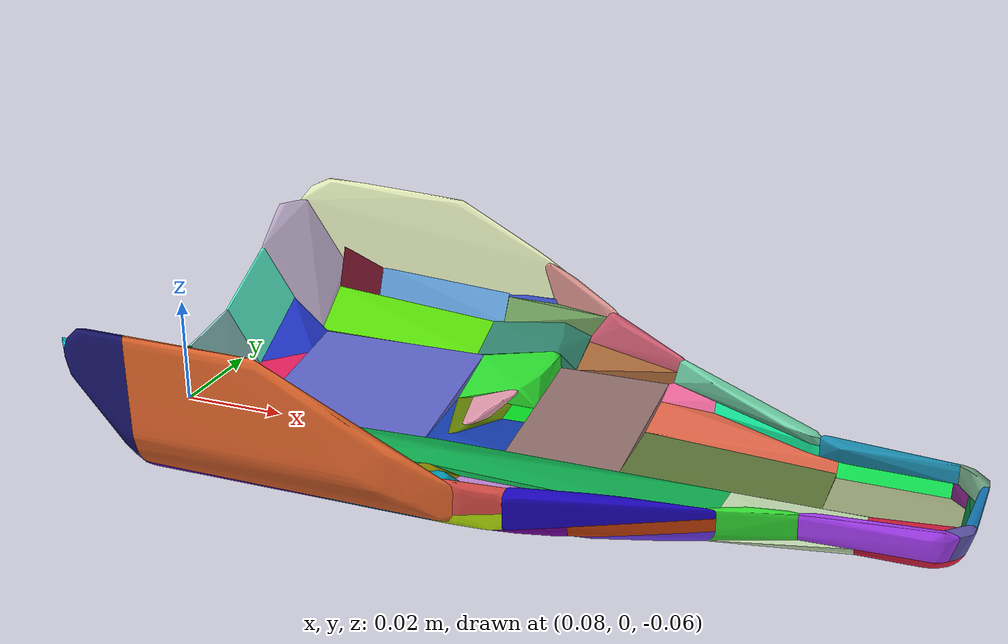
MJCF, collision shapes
<mujoco model="arm_link_wr1_0">
  <default>
    <default class="visual">
      <geom group="2" type="mesh" contype="0" conaffinity="0"/>
    </default>
    <default class="collision">
      <geom group="3" type="mesh"/>
    </default>
  </default>
  <asset>
    <material name="material_0" specular="1.0" shininess="0.2" rgba="0.27450980 0.27450980 0.27450980 1.0"/>
    <mesh file="arm_link_wr1_0.obj"/>
    <mesh file="arm_link_wr1_0_collision_0.obj"/>
    <mesh file="arm_link_wr1_0_collision_1.obj"/>
    <mesh file="arm_link_wr1_0_collision_2.obj"/>
    <mesh file="arm_link_wr1_0_collision_3.obj"/>
    <mesh file="arm_link_wr1_0_collision_4.obj"/>
    <mesh file="arm_link_wr1_0_collision_5.obj"/>
    <mesh file="arm_link_wr1_0_collision_6.obj"/>
    <mesh file="arm_link_wr1_0_collision_7.obj"/>
    <mesh file="arm_link_wr1_0_collision_8.obj"/>
    <mesh file="arm_link_wr1_0_collision_9.obj"/>
    <mesh file="arm_link_wr1_0_collision_10.obj"/>
    <mesh file="arm_link_wr1_0_collision_11.obj"/>
    <mesh file="arm_link_wr1_0_collision_12.obj"/>
    <mesh file="arm_link_wr1_0_collision_13.obj"/>
    <mesh file="arm_link_wr1_0_collision_14.obj"/>
    <mesh file="arm_link_wr1_0_collision_15.obj"/>
    <mesh file="arm_link_wr1_0_collision_16.obj"/>
    <mesh file="arm_link_wr1_0_collision_17.obj"/>
    <mesh file="arm_link_wr1_0_collision_18.obj"/>
    <mesh file="arm_link_wr1_0_collision_19.obj"/>
    <mesh file="arm_link_wr1_0_collision_20.obj"/>
    <mesh file="arm_link_wr1_0_collision_21.obj"/>
    <mesh file="arm_link_wr1_0_collision_22.obj"/>
    <mesh file="arm_link_wr1_0_collision_23.obj"/>
    <mesh file="arm_link_wr1_0_collision_24.obj"/>
    <mesh file="arm_link_wr1_0_collision_25.obj"/>
    <mesh file="arm_link_wr1_0_collision_26.obj"/>
    <mesh file="arm_link_wr1_0_collision_27.obj"/>
    <mesh file="arm_link_wr1_0_collision_28.obj"/>
    <mesh file="arm_link_wr1_0_collision_29.obj"/>
    <mesh file="arm_link_wr1_0_collision_30.obj"/>
    <mesh file="arm_link_wr1_0_collision_31.obj"/>
    <mesh file="arm_link_wr1_0_collision_32.obj"/>
    <mesh file="arm_link_wr1_0_collision_33.obj"/>
    <mesh file="arm_link_wr1_0_collision_34.obj"/>
    <mesh file="arm_link_wr1_0_collision_35.obj"/>
    <mesh file="arm_link_wr1_0_collision_36.obj"/>
    <mesh file="arm_link_wr1_0_collision_37.obj"/>
    <mesh file="arm_link_wr1_0_collision_38.obj"/>
    <mesh file="arm_link_wr1_0_collision_39.obj"/>
    <mesh file="arm_link_wr1_0_collision_40.obj"/>
    <mesh file="arm_link_wr1_0_collision_41.obj"/>
    <mesh file="arm_link_wr1_0_collision_42.obj"/>
    <mesh file="arm_link_wr1_0_collision_43.obj"/>
    <mesh file="arm_link_wr1_0_collision_44.obj"/>
    <mesh file="arm_link_wr1_0_collision_45.obj"/>
    <mesh file="arm_link_wr1_0_collision_46.obj"/>
    <mesh file="arm_link_wr1_0_collision_47.obj"/>
    <mesh file="arm_link_wr1_0_collision_48.obj"/>
    <mesh file="arm_link_wr1_0_collision_49.obj"/>
    <mesh file="arm_link_wr1_0_collision_50.obj"/>
    <mesh file="arm_link_wr1_0_collision_51.obj"/>
    <mesh file="arm_link_wr1_0_collision_52.obj"/>
    <mesh file="arm_link_wr1_0_collision_53.obj"/>
    <mesh file="arm_link_wr1_0_collision_54.obj"/>
    <mesh file="arm_link_wr1_0_collision_55.obj"/>
    <mesh file="arm_link_wr1_0_collision_56.obj"/>
    <mesh file="arm_link_wr1_0_collision_57.obj"/>
    <mesh file="arm_link_wr1_0_collision_58.obj"/>
  </asset>
  <worldbody>
    <body name="arm_link_wr1_0">
      <geom material="material_0" mesh="arm_link_wr1_0" class="visual"/>
      <geom mesh="arm_link_wr1_0_collision_0" rgba="0.7340942773129469 0.6718681699440328 0.7881633818288512 1" class="collision"/>
      <geom mesh="arm_link_wr1_0_collision_1" rgba="0.10228793866781682 0.09151431572329516 0.44300110221411193 1" class="collision"/>
      <geom mesh="arm_link_wr1_0_collision_2" rgba="0.05994986020430748 0.7223307497921307 0.05702442974755084 1" class="collision"/>
      <geom mesh="arm_link_wr1_0_collision_3" rgba="0.9154807560229568 0.4127976524733521 0.18280280718476316 1" class="collision"/>
      <geom mesh="arm_link_wr1_0_collision_4" rgba="0.35009203696916424 0.6970643426183752 0.7548120707907565 1" class="collision"/>
      <geom mesh="arm_link_wr1_0_collision_5" rgba="0.9409699549618435 0.9811164823040257 0.7754155053821998 1" class="collision"/>
      <geom mesh="arm_link_wr1_0_collision_6" rgba="0.14724365776942583 0.23039173703835225 0.858090273572644 1" class="collision"/>
      <geom mesh="arm_link_wr1_0_collision_7" rgba="0.9561696537322428 0.12889155440814337 0.39968872988637283 1" class="collision"/>
      <geom mesh="arm_link_wr1_0_collision_8" rgba="0.3480449495470088 0.8665884927716947 0.02295574520960353 1" class="collision"/>
      <geom mesh="arm_link_wr1_0_collision_9" rgba="0.3688956978355996 0.39463035908657573 0.7927687143927091 1" class="collision"/>
      <geom mesh="arm_link_wr1_0_collision_10" rgba="0.5902483721499295 0.832930889593576 0.8207412543139326 1" class="collision"/>
      <geom mesh="arm_link_wr1_0_collision_11" rgba="0.059272426439534676 0.735377608807965 0.3348461615931957 1" class="collision"/>
      <geom mesh="arm_link_wr1_0_collision_12" rgba="0.4144339219226929 0.0849058344407968 0.7739283992589813 1" class="collision"/>
      <geom mesh="arm_link_wr1_0_collision_13" rgba="0.77362035767623 0.9682277385326677 0.04893290574848164 1" class="collision"/>
      <geom mesh="arm_link_wr1_0_collision_14" rgba="0.3599598753972547 0.9805951549126887 0.8256342663513286 1" class="collision"/>
      <geom mesh="arm_link_wr1_0_collision_15" rgba="0.08061535321717728 0.8286836522020373 0.8611962720328044 1" class="collision"/>
      <geom mesh="arm_link_wr1_0_collision_16" rgba="0.04192164433870771 0.6923246445602217 0.1384340218096194 1" class="collision"/>
      <geom mesh="arm_link_wr1_0_collision_17" rgba="0.5693305548443547 0.4394062259622117 0.42416248979379856 1" class="collision"/>
      <geom mesh="arm_link_wr1_0_collision_18" rgba="0.1803016172484755 0.5013160500852155 0.41508633305404063 1" class="collision"/>
      <geom mesh="arm_link_wr1_0_collision_19" rgba="0.8792511298927466 0.12545287867378518 0.26710520066703813 1" class="collision"/>
      <geom mesh="arm_link_wr1_0_collision_20" rgba="0.8202250068875634 0.9310017107233687 0.7484135214841207 1" class="collision"/>
      <geom mesh="arm_link_wr1_0_collision_21" rgba="0.8453178757339039 0.6011529542872798 0.9421408601943968 1" class="collision"/>
      <geom mesh="arm_link_wr1_0_collision_22" rgba="0.4521635140205357 0.2708912187022806 0.7096042533515152 1" class="collision"/>
      <geom mesh="arm_link_wr1_0_collision_23" rgba="0.6710990765620134 0.24605236074399073 0.9851743003317373 1" class="collision"/>
      <geom mesh="arm_link_wr1_0_collision_24" rgba="0.36670854561565513 0.468276500271785 0.22284095518758384 1" class="collision"/>
      <geom mesh="arm_link_wr1_0_collision_25" rgba="0.045578428419104866 0.7379067390786097 0.8497404709032792 1" class="collision"/>
      <geom mesh="arm_link_wr1_0_collision_26" rgba="0.16998041958973065 0.8682467394300334 0.18084973805297333 1" class="collision"/>
      <geom mesh="arm_link_wr1_0_collision_27" rgba="0.39843048205853204 0.05412331348124355 0.13624385123695248 1" class="collision"/>
      <geom mesh="arm_link_wr1_0_collision_28" rgba="0.3731838328422249 0.6221505284844349 0.8526693251211199 1" class="collision"/>
      <geom mesh="arm_link_wr1_0_collision_29" rgba="0.44511743209197985 0.8260483447197706 0.661926748275823 1" class="collision"/>
      <geom mesh="arm_link_wr1_0_collision_30" rgba="0.031277091058773854 0.43799639894104436 0.1992290040394964 1" class="collision"/>
      <geom mesh="arm_link_wr1_0_collision_31" rgba="0.6003337787475806 0.6001309164208595 0.00388521080059967 1" class="collision"/>
      <geom mesh="arm_link_wr1_0_collision_32" rgba="0.20726675199313893 0.8975703903167266 0.20795948758804184 1" class="collision"/>
      <geom mesh="arm_link_wr1_0_collision_33" rgba="0.780590549535578 0.3473682842394148 0.43061042568160113 1" class="collision"/>
      <geom mesh="arm_link_wr1_0_collision_34" rgba="0.07786146941652838 0.4786030363792033 0.7312919940777112 1" class="collision"/>
      <geom mesh="arm_link_wr1_0_collision_35" rgba="0.0930785878247492 0.08692997480185338 0.28744630179065944 1" class="collision"/>
      <geom mesh="arm_link_wr1_0_collision_36" rgba="0.6410351818894036 0.3983848545271885 0.21352432284585177 1" class="collision"/>
      <geom mesh="arm_link_wr1_0_collision_37" rgba="0.8928329063452597 0.4003508783223033 0.28168299557804066 1" class="collision"/>
      <geom mesh="arm_link_wr1_0_collision_38" rgba="0.37210295741335375 0.3356101162289885 0.6674558434753116 1" class="collision"/>
      <geom mesh="arm_link_wr1_0_collision_39" rgba="0.42088091692815155 0.6085185232442446 0.35406525257760235 1" class="collision"/>
      <geom mesh="arm_link_wr1_0_collision_40" rgba="0.0977593612145623 0.5352073232575072 0.6659272131302287 1" class="collision"/>
      <geom mesh="arm_link_wr1_0_collision_41" rgba="0.05572020838760017 0.8896512439199635 0.3124136931252167 1" class="collision"/>
      <geom mesh="arm_link_wr1_0_collision_42" rgba="0.0823379201948985 0.24685589452606893 0.7052761334418741 1" class="collision"/>
      <geom mesh="arm_link_wr1_0_collision_43" rgba="0.42802469587312 0.6318992931689636 0.5026213504399658 1" class="collision"/>
      <geom mesh="arm_link_wr1_0_collision_44" rgba="0.9119096402300442 0.3905190272333693 0.5992987481011833 1" class="collision"/>
      <geom mesh="arm_link_wr1_0_collision_45" rgba="0.6227184261199358 0.6758093311543307 0.49140932987398 1" class="collision"/>
      <geom mesh="arm_link_wr1_0_collision_46" rgba="0.8686973797900037 0.5888511980394103 0.5633948742772255 1" class="collision"/>
      <geom mesh="arm_link_wr1_0_collision_47" rgba="0.032152948607256815 0.8765024633254771 0.13967599070417125 1" class="collision"/>
      <geom mesh="arm_link_wr1_0_collision_48" rgba="0.0014706489523620414 0.44743140785882096 0.9028077033263292 1" class="collision"/>
      <geom mesh="arm_link_wr1_0_collision_49" rgba="0.4779500741224074 0.009945087380648587 0.6492645346162718 1" class="collision"/>
      <geom mesh="arm_link_wr1_0_collision_50" rgba="0.07678145165451467 0.9207548956504066 0.6162271236334741 1" class="collision"/>
      <geom mesh="arm_link_wr1_0_collision_51" rgba="0.12126095324625286 0.02531344521569101 0.7932949446261065 1" class="collision"/>
      <geom mesh="arm_link_wr1_0_collision_52" rgba="0.9167253757528319 0.6216689670575748 0.7055088876833246 1" class="collision"/>
      <geom mesh="arm_link_wr1_0_collision_53" rgba="0.26214156142683287 0.36277803343557313 0.8867470948790352 1" class="collision"/>
      <geom mesh="arm_link_wr1_0_collision_54" rgba="0.45323280128313037 0.2383874618770211 0.9829736313541444 1" class="collision"/>
      <geom mesh="arm_link_wr1_0_collision_55" rgba="0.7931849155760001 0.25201070896566335 0.03462311920781036 1" class="collision"/>
      <geom mesh="arm_link_wr1_0_collision_56" rgba="0.3541524339510661 0.08029782274811703 0.369359943331522 1" class="collision"/>
      <geom mesh="arm_link_wr1_0_collision_57" rgba="0.9355806498269422 0.33851774275314905 0.3092779560347456 1" class="collision"/>
      <geom mesh="arm_link_wr1_0_collision_58" rgba="0.39423563925231575 0.5221063001546694 0.017467263069382732 1" class="collision"/>
    </body>
  </worldbody>
</mujoco>
